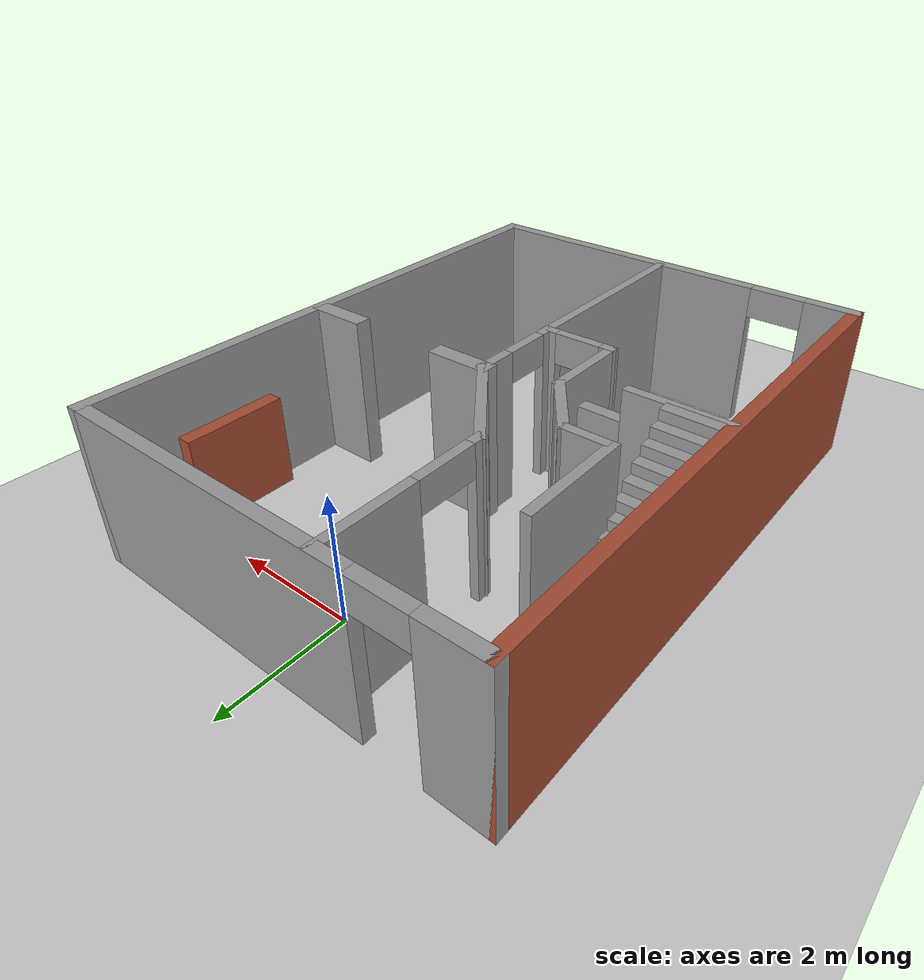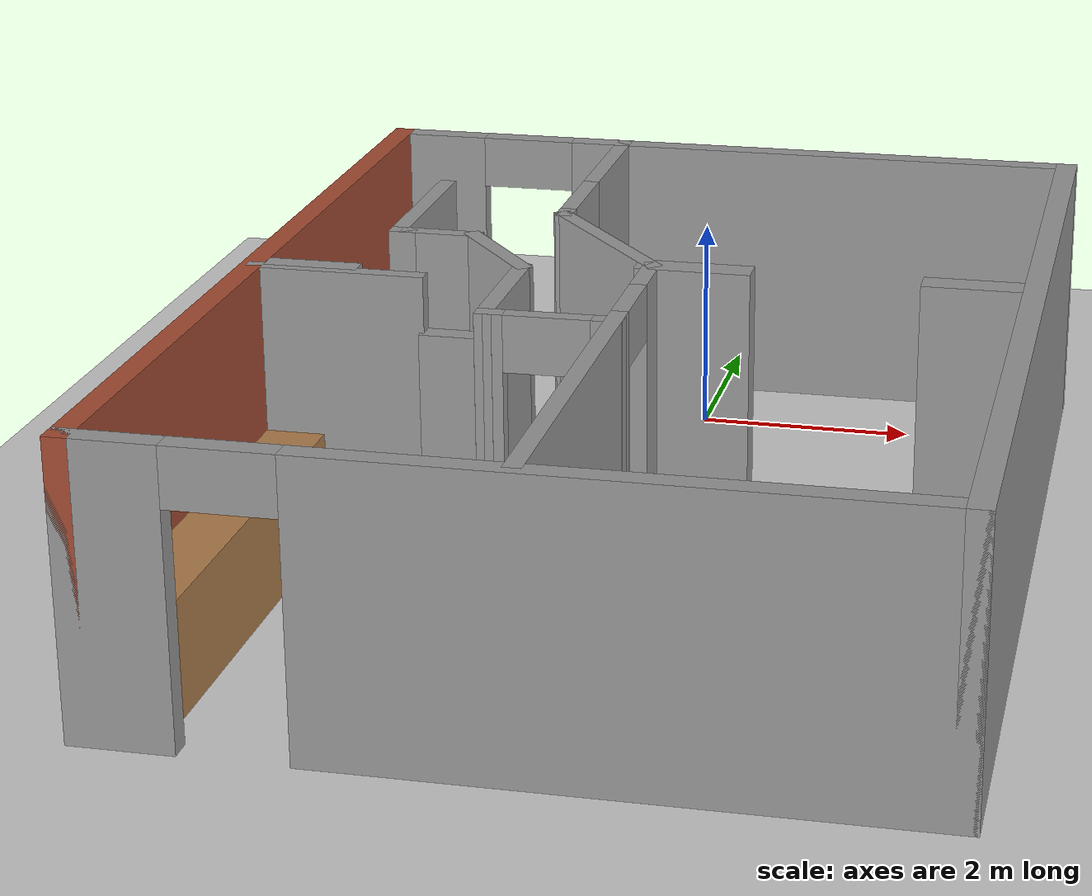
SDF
<sdf version="1.6">
 <world name="default">
  <light name="sun" type="directional">
   <pose>0 0 10 0 -0 0</pose>
   <diffuse>0.8 0.8 0.8 1</diffuse>
   <specular>0.1 0.1 0.1 1</specular>
   <attenuation>
    <range>1000</range>
    <constant>0.9</constant>
    <linear>0.01</linear>
    <quadratic>0.001</quadratic>
   </attenuation>
   <direction>-0.5 0.5 -1</direction>
  </light>
  <model name="ground_plane">
   <static>1</static>
   <link name="link">
    <collision name="collision">
     <geometry><plane><normal>0 0 1</normal><size>100 100</size></plane></geometry>
     <surface><friction><ode><mu>100</mu><mu2>50</mu2></ode></friction></surface>
    </collision>
    <visual name="visual">
     <cast_shadows>0</cast_shadows>
     <geometry><plane><normal>0 0 1</normal><size>100 100</size></plane></geometry>
     <material>
      <script><uri>file://media/materials/scripts/gazebo.material</uri><name>Gazebo/Grey</name></script>
     </material>
    </visual>
   </link>
  </model>
  <gravity>0 0 -9.8</gravity>
  <magnetic_field>6e-06 2.3e-05 -4.2e-05</magnetic_field>
  <atmosphere type="adiabatic"/>
  <physics name="default_physics" default="0" type="ode">
   <max_step_size>0.001</max_step_size>
   <real_time_factor>1</real_time_factor>
   <real_time_update_rate>1000</real_time_update_rate>
  </physics>
  <scene><ambient>0.4 0.4 0.4 1</ambient><background>0.7 0.7 0.7 1</background><shadows>1</shadows></scene>
  <spherical_coordinates>
   <surface_model>EARTH_WGS84</surface_model>
   <latitude_deg>0</latitude_deg>
   <longitude_deg>0</longitude_deg>
   <elevation>0</elevation>
   <heading_deg>0</heading_deg>
  </spherical_coordinates>
  <model name="23_PG">
   <pose>0.00165 -3.38269 0 0 -0 0</pose>
   <link name="Door_2">
    <collision name="Door_2_Collision">
     <geometry><box><size>0.71485 0.2 2</size></box></geometry>
     <pose>0 0 1 0 -0 0</pose>
    </collision>
    <visual name="Door_2_Visual">
     <pose>0 0 1 0 -0 0</pose>
     <geometry><box><size>0.71485 0.2 2</size></box></geometry>
     <material>
      <script><uri>file://media/materials/scripts/gazebo.material</uri><name>Gazebo/Grey</name></script>
     </material>
    </visual>
    <pose>-1.47346 -0.250326 0 0 -0 0</pose>
   </link>
   <link name="Stairs_1">
    <visual name="Stairs_1_Visual_0">
     <pose>-2.83563 2.63189 0.083333 0 -0 0</pose>
     <geometry><box><size>0.828075 0.195422 0.166667</size></box></geometry>
     <material>
      <script><uri>file://media/materials/scripts/gazebo.material</uri><name>Gazebo/Grey</name></script>
      <ambient>1 1 1 1</ambient>
     </material>
    </visual>
    <collision name="Stairs_1_Collision_0">
     <geometry><box><size>0.828075 0.195422 0.166667</size></box></geometry>
     <pose>-2.83563 2.63189 0.083333 0 -0 0</pose>
    </collision>
    <visual name="Stairs_1_Visual_1">
     <pose>-2.83563 2.43647 0.25 0 -0 0</pose>
     <geometry><box><size>0.828075 0.195422 0.166667</size></box></geometry>
     <material>
      <script><uri>file://media/materials/scripts/gazebo.material</uri><name>Gazebo/Grey</name></script>
      <ambient>1 1 1 1</ambient>
     </material>
    </visual>
    <collision name="Stairs_1_Collision_1">
     <geometry><box><size>0.828075 0.195422 0.166667</size></box></geometry>
     <pose>-2.83563 2.43647 0.25 0 -0 0</pose>
    </collision>
    <visual name="Stairs_1_Visual_2">
     <pose>-2.83563 2.24105 0.416667 0 -0 0</pose>
     <geometry><box><size>0.828075 0.195422 0.166667</size></box></geometry>
     <material>
      <script><uri>file://media/materials/scripts/gazebo.material</uri><name>Gazebo/Grey</name></script>
      <ambient>1 1 1 1</ambient>
     </material>
    </visual>
    <collision name="Stairs_1_Collision_2">
     <geometry><box><size>0.828075 0.195422 0.166667</size></box></geometry>
     <pose>-2.83563 2.24105 0.416667 0 -0 0</pose>
    </collision>
    <visual name="Stairs_1_Visual_3">
     <pose>-2.83563 2.04562 0.583333 0 -0 0</pose>
     <geometry><box><size>0.828075 0.195422 0.166667</size></box></geometry>
     <material>
      <script><uri>file://media/materials/scripts/gazebo.material</uri><name>Gazebo/Grey</name></script>
      <ambient>1 1 1 1</ambient>
     </material>
    </visual>
    <collision name="Stairs_1_Collision_3">
     <geometry><box><size>0.828075 0.195422 0.166667</size></box></geometry>
     <pose>-2.83563 2.04562 0.583333 0 -0 0</pose>
    </collision>
    <visual name="Stairs_1_Visual_4">
     <pose>-2.83563 1.8502 0.75 0 -0 0</pose>
     <geometry><box><size>0.828075 0.195422 0.166667</size></box></geometry>
     <material>
      <script><uri>file://media/materials/scripts/gazebo.material</uri><name>Gazebo/Grey</name></script>
      <ambient>1 1 1 1</ambient>
     </material>
    </visual>
    <collision name="Stairs_1_Collision_4">
     <geometry><box><size>0.828075 0.195422 0.166667</size></box></geometry>
     <pose>-2.83563 1.8502 0.75 0 -0 0</pose>
    </collision>
    <visual name="Stairs_1_Visual_5">
     <pose>-2.83563 1.65478 0.916667 0 -0 0</pose>
     <geometry><box><size>0.828075 0.195422 0.166667</size></box></geometry>
     <material>
      <script><uri>file://media/materials/scripts/gazebo.material</uri><name>Gazebo/Grey</name></script>
      <ambient>1 1 1 1</ambient>
     </material>
    </visual>
    <collision name="Stairs_1_Collision_5">
     <geometry><box><size>0.828075 0.195422 0.166667</size></box></geometry>
     <pose>-2.83563 1.65478 0.916667 0 -0 0</pose>
    </collision>
    <visual name="Stairs_1_Visual_6">
     <pose>-2.83563 1.45936 1.08333 0 -0 0</pose>
     <geometry><box><size>0.828075 0.195422 0.166667</size></box></geometry>
     <material>
      <script><uri>file://media/materials/scripts/gazebo.material</uri><name>Gazebo/Grey</name></script>
      <ambient>1 1 1 1</ambient>
     </material>
    </visual>
    <collision name="Stairs_1_Collision_6">
     <geometry><box><size>0.828075 0.195422 0.166667</size></box></geometry>
     <pose>-2.83563 1.45936 1.08333 0 -0 0</pose>
    </collision>
    <visual name="Stairs_1_Visual_7">
     <pose>-2.83563 1.26394 1.25 0 -0 0</pose>
     <geometry><box><size>0.828075 0.195422 0.166667</size></box></geometry>
     <material>
      <script><uri>file://media/materials/scripts/gazebo.material</uri><name>Gazebo/Grey</name></script>
      <ambient>1 1 1 1</ambient>
     </material>
    </visual>
    <collision name="Stairs_1_Collision_7">
     <geometry><box><size>0.828075 0.195422 0.166667</size></box></geometry>
     <pose>-2.83563 1.26394 1.25 0 -0 0</pose>
    </collision>
    <visual name="Stairs_1_Visual_8">
     <pose>-2.83563 1.06852 1.41667 0 -0 0</pose>
     <geometry><box><size>0.828075 0.195422 0.166667</size></box></geometry>
     <material>
      <script><uri>file://media/materials/scripts/gazebo.material</uri><name>Gazebo/Grey</name></script>
      <ambient>1 1 1 1</ambient>
     </material>
    </visual>
    <collision name="Stairs_1_Collision_8">
     <geometry><box><size>0.828075 0.195422 0.166667</size></box></geometry>
     <pose>-2.83563 1.06852 1.41667 0 -0 0</pose>
    </collision>
    <visual name="Stairs_1_Visual_9">
     <pose>-2.83563 0.873093 1.58333 0 -0 0</pose>
     <geometry><box><size>0.828075 0.195422 0.166667</size></box></geometry>
     <material>
      <script><uri>file://media/materials/scripts/gazebo.material</uri><name>Gazebo/Grey</name></script>
      <ambient>1 1 1 1</ambient>
     </material>
    </visual>
    <collision name="Stairs_1_Collision_9">
     <geometry><box><size>0.828075 0.195422 0.166667</size></box></geometry>
     <pose>-2.83563 0.873093 1.58333 0 -0 0</pose>
    </collision>
    <visual name="Stairs_1_Visual_10">
     <pose>-2.83563 0.677672 1.75 0 -0 0</pose>
     <geometry><box><size>0.828075 0.195422 0.166667</size></box></geometry>
     <material>
      <script><uri>file://media/materials/scripts/gazebo.material</uri><name>Gazebo/Grey</name></script>
      <ambient>1 1 1 1</ambient>
     </material>
    </visual>
    <collision name="Stairs_1_Collision_10">
     <geometry><box><size>0.828075 0.195422 0.166667</size></box></geometry>
     <pose>-2.83563 0.677672 1.75 0 -0 0</pose>
    </collision>
    <visual name="Stairs_1_Visual_11">
     <pose>-2.83563 0.48225 1.91667 0 -0 0</pose>
     <geometry><box><size>0.828075 0.195422 0.166667</size></box></geometry>
     <material>
      <script><uri>file://media/materials/scripts/gazebo.material</uri><name>Gazebo/Grey</name></script>
      <ambient>1 1 1 1</ambient>
     </material>
    </visual>
    <collision name="Stairs_1_Collision_11">
     <geometry><box><size>0.828075 0.195422 0.166667</size></box></geometry>
     <pose>-2.83563 0.48225 1.91667 0 -0 0</pose>
    </collision>
    <visual name="Stairs_1_Visual_12">
     <pose>-2.83563 0.286828 2.08333 0 -0 0</pose>
     <geometry><box><size>0.828075 0.195422 0.166667</size></box></geometry>
     <material>
      <script><uri>file://media/materials/scripts/gazebo.material</uri><name>Gazebo/Grey</name></script>
      <ambient>1 1 1 1</ambient>
     </material>
    </visual>
    <collision name="Stairs_1_Collision_12">
     <geometry><box><size>0.828075 0.195422 0.166667</size></box></geometry>
     <pose>-2.83563 0.286828 2.08333 0 -0 0</pose>
    </collision>
    <visual name="Stairs_1_Visual_13">
     <pose>-2.83563 0.091407 2.25 0 -0 0</pose>
     <geometry><box><size>0.828075 0.195422 0.166667</size></box></geometry>
     <material>
      <script><uri>file://media/materials/scripts/gazebo.material</uri><name>Gazebo/Grey</name></script>
      <ambient>1 1 1 1</ambient>
     </material>
    </visual>
    <collision name="Stairs_1_Collision_13">
     <geometry><box><size>0.828075 0.195422 0.166667</size></box></geometry>
     <pose>-2.83563 0.091407 2.25 0 -0 0</pose>
    </collision>
    <visual name="Stairs_1_Visual_14">
     <pose>-2.83563 -0.104015 2.41667 0 -0 0</pose>
     <geometry><box><size>0.828075 0.195422 0.166667</size></box></geometry>
     <material>
      <script><uri>file://media/materials/scripts/gazebo.material</uri><name>Gazebo/Grey</name></script>
      <ambient>1 1 1 1</ambient>
     </material>
    </visual>
    <collision name="Stairs_1_Collision_14">
     <geometry><box><size>0.828075 0.195422 0.166667</size></box></geometry>
     <pose>-2.83563 -0.104015 2.41667 0 -0 0</pose>
    </collision>
   </link>
   <link name="Wall_0">
    <pose>0 4.4515 0 0 -0 0</pose>
    <visual name="Wall_0_Visual_0">
     <pose>-2.9629 0 1.25 0 -0 0</pose>
     <geometry><box><size>0.981203 0.2 2.5</size></box></geometry>
     <material>
      <script><uri>file://media/materials/scripts/gazebo.material</uri><name>Gazebo/Grey</name></script>
      <ambient>1 1 1 1</ambient>
     </material>
    </visual>
    <collision name="Wall_0_Collision_0">
     <geometry><box><size>0.981203 0.2 2.5</size></box></geometry>
     <pose>-2.9629 0 1.25 0 -0 0</pose>
    </collision>
    <visual name="Wall_0_Visual_1">
     <pose>0.940602 0 1.25 0 -0 0</pose>
     <geometry><box><size>5.0258 0.2 2.5</size></box></geometry>
     <material>
      <script><uri>file://media/materials/scripts/gazebo.material</uri><name>Gazebo/Grey</name></script>
      <ambient>1 1 1 1</ambient>
     </material>
    </visual>
    <collision name="Wall_0_Collision_1">
     <geometry><box><size>5.0258 0.2 2.5</size></box></geometry>
     <pose>0.940602 0 1.25 0 -0 0</pose>
    </collision>
    <visual name="Wall_0_Visual_2">
     <pose>-2.0223 0 2.25 0 -0 0</pose>
     <geometry><box><size>0.9 0.2 0.5</size></box></geometry>
     <material>
      <script><uri>file://media/materials/scripts/gazebo.material</uri><name>Gazebo/Grey</name></script>
      <ambient>1 1 1 1</ambient>
     </material>
    </visual>
    <collision name="Wall_0_Collision_2">
     <geometry><box><size>0.9 0.2 0.5</size></box></geometry>
     <pose>-2.0223 0 2.25 0 -0 0</pose>
    </collision>
   </link>
   <link name="Wall_11">
    <collision name="Wall_11_Collision">
     <geometry><box><size>1.02 0.27 2.5</size></box></geometry>
     <pose>0 0 1.25 0 -0 0</pose>
    </collision>
    <visual name="Wall_11_Visual">
     <pose>0 0 1.25 0 -0 0</pose>
     <geometry><box><size>1.02 0.27 2.5</size></box></geometry>
     <material>
      <script><uri>file://media/materials/scripts/gazebo.material</uri><name>Gazebo/Grey</name></script>
      <ambient>1 1 1 1</ambient>
     </material>
    </visual>
    <pose>0.4215 0.4735 0 0 -0 0</pose>
   </link>
   <link name="Wall_13">
    <collision name="Wall_13_Collision">
     <geometry><box><size>1.039 0.27 2.5</size></box></geometry>
     <pose>0 0 1.25 0 -0 0</pose>
    </collision>
    <visual name="Wall_13_Visual">
     <pose>0 0 1.25 0 -0 0</pose>
     <geometry><box><size>1.039 0.27 2.5</size></box></geometry>
     <material>
      <script><uri>file://media/materials/scripts/gazebo.material</uri><name>Gazebo/Grey</name></script>
      <ambient>1 1 1 1</ambient>
     </material>
    </visual>
    <pose>2.912 0.4735 0 0 -0 0</pose>
   </link>
   <link name="Wall_17">
    <collision name="Wall_17_Collision">
     <geometry><box><size>1.6 0.15 2.5</size></box></geometry>
     <pose>0 0 1.25 0 -0 0</pose>
    </collision>
    <visual name="Wall_17_Visual">
     <pose>0 0 1.25 0 -0 0</pose>
     <geometry><box><size>1.6 0.15 2.5</size></box></geometry>
     <material>
      <script><uri>file://media/materials/scripts/gazebo.material</uri><name>Gazebo/Grey</name></script>
      <ambient>1 1 1 1</ambient>
     </material>
    </visual>
    <pose>-2.5935 -0.2235 0 0 -0 0</pose>
   </link>
   <link name="Wall_19">
    <pose>0.0465 -1.9515 0 0 0 -1.5708</pose>
    <visual name="Wall_19_Visual_0">
     <pose>-2.17681 0 1.25 0 -0 0</pose>
     <geometry><box><size>0.646388 0.15 2.5</size></box></geometry>
     <material>
      <script><uri>file://media/materials/scripts/gazebo.material</uri><name>Gazebo/Grey</name></script>
      <ambient>1 1 1 1</ambient>
     </material>
    </visual>
    <collision name="Wall_19_Collision_0">
     <geometry><box><size>0.646388 0.15 2.5</size></box></geometry>
     <pose>-2.17681 0 1.25 0 -0 0</pose>
    </collision>
    <visual name="Wall_19_Visual_1">
     <pose>0.693844 0 1.25 0 -0 0</pose>
     <geometry><box><size>3.61231 0.15 2.5</size></box></geometry>
     <material>
      <script><uri>file://media/materials/scripts/gazebo.material</uri><name>Gazebo/Grey</name></script>
      <ambient>1 1 1 1</ambient>
     </material>
    </visual>
    <collision name="Wall_19_Collision_1">
     <geometry><box><size>3.61231 0.15 2.5</size></box></geometry>
     <pose>0.693844 0 1.25 0 -0 0</pose>
    </collision>
    <visual name="Wall_19_Visual_2">
     <pose>-1.48296 0 2.25 0 -0 0</pose>
     <geometry><box><size>0.7413 0.15 0.5</size></box></geometry>
     <material>
      <script><uri>file://media/materials/scripts/gazebo.material</uri><name>Gazebo/Grey</name></script>
      <ambient>1 1 1 1</ambient>
     </material>
    </visual>
    <collision name="Wall_19_Collision_2">
     <geometry><box><size>0.7413 0.15 0.5</size></box></geometry>
     <pose>-1.48296 0 2.25 0 -0 0</pose>
    </collision>
   </link>
   <link name="Wall_2">
    <collision name="Wall_2_Collision">
     <geometry><box><size>9.103 0.2 2.5</size></box></geometry>
     <pose>0 0 1.25 0 -0 0</pose>
    </collision>
    <visual name="Wall_2_Visual">
     <pose>0 0 1.25 0 -0 0</pose>
     <geometry><box><size>9.103 0.2 2.5</size></box></geometry>
     <material>
      <script><uri>file://media/materials/scripts/gazebo.material</uri><name>Gazebo/Bricks</name></script>
      <ambient>1 1 1 1</ambient>
     </material>
    </visual>
    <pose>-3.3535 0 0 0 0 -1.5708</pose>
   </link>
   <link name="Wall_21">
    <pose>-0.495736 -1.06377 0 0 0 -3.12936</pose>
    <visual name="Wall_21_Visual_0">
     <pose>-0.491963 0 1.25 0 -0 0</pose>
     <geometry><box><size>0.266074 0.15 2.5</size></box></geometry>
     <material>
      <script><uri>file://media/materials/scripts/gazebo.material</uri><name>Gazebo/Grey</name></script>
      <ambient>1 1 1 1</ambient>
     </material>
    </visual>
    <collision name="Wall_21_Collision_0">
     <geometry><box><size>0.266074 0.15 2.5</size></box></geometry>
     <pose>-0.491963 0 1.25 0 -0 0</pose>
    </collision>
    <visual name="Wall_21_Visual_1">
     <pose>0.503774 0 1.25 0 -0 0</pose>
     <geometry><box><size>0.242452 0.15 2.5</size></box></geometry>
     <material>
      <script><uri>file://media/materials/scripts/gazebo.material</uri><name>Gazebo/Grey</name></script>
      <ambient>1 1 1 1</ambient>
     </material>
    </visual>
    <collision name="Wall_21_Collision_1">
     <geometry><box><size>0.242452 0.15 2.5</size></box></geometry>
     <pose>0.503774 0 1.25 0 -0 0</pose>
    </collision>
    <visual name="Wall_21_Visual_2">
     <pose>0.011811 0 2.25 0 -0 0</pose>
     <geometry><box><size>0.741474 0.15 0.5</size></box></geometry>
     <material>
      <script><uri>file://media/materials/scripts/gazebo.material</uri><name>Gazebo/Grey</name></script>
      <ambient>1 1 1 1</ambient>
     </material>
    </visual>
    <collision name="Wall_21_Collision_2">
     <geometry><box><size>0.741474 0.15 0.5</size></box></geometry>
     <pose>0.011811 0 2.25 0 -0 0</pose>
    </collision>
   </link>
   <link name="Wall_22">
    <collision name="Wall_22_Collision">
     <geometry><box><size>1.425 0.15 2.5</size></box></geometry>
     <pose>0 0 1.25 0 -0 0</pose>
    </collision>
    <visual name="Wall_22_Visual">
     <pose>0 0 1.25 0 -0 0</pose>
     <geometry><box><size>1.425 0.15 2.5</size></box></geometry>
     <material>
      <script><uri>file://media/materials/scripts/gazebo.material</uri><name>Gazebo/Grey</name></script>
      <ambient>1 1 1 1</ambient>
     </material>
    </visual>
    <pose>-1.0455 -0.433 0 0 -0 1.5708</pose>
   </link>
   <link name="Wall_23">
    <collision name="Wall_23_Collision">
     <geometry><box><size>1.22809 0.15 2.5</size></box></geometry>
     <pose>0 0 1.25 0 -0 0</pose>
    </collision>
    <visual name="Wall_23_Visual">
     <pose>0 0 1.25 0 -0 0</pose>
     <geometry><box><size>1.22809 0.15 2.5</size></box></geometry>
     <material>
      <script><uri>file://media/materials/scripts/gazebo.material</uri><name>Gazebo/Grey</name></script>
      <ambient>1 1 1 1</ambient>
     </material>
    </visual>
    <pose>-1.3745 0.6315 0 0 -0 2.22728</pose>
   </link>
   <link name="Wall_26">
    <collision name="Wall_26_Collision">
     <geometry><box><size>0.75 0.15 2.5</size></box></geometry>
     <pose>0 0 1.25 0 -0 0</pose>
    </collision>
    <visual name="Wall_26_Visual">
     <pose>0 0 1.25 0 -0 0</pose>
     <geometry><box><size>0.75 0.15 2.5</size></box></geometry>
     <material>
      <script><uri>file://media/materials/scripts/gazebo.material</uri><name>Gazebo/Grey</name></script>
      <ambient>1 1 1 1</ambient>
     </material>
    </visual>
    <pose>-2.0035 1.0585 0 0 -0 3.14159</pose>
   </link>
   <link name="Wall_27">
    <collision name="Wall_27_Collision">
     <geometry><box><size>0.25 0.15 2.5</size></box></geometry>
     <pose>0 0 1.25 0 -0 0</pose>
    </collision>
    <visual name="Wall_27_Visual">
     <pose>0 0 1.25 0 -0 0</pose>
     <geometry><box><size>0.25 0.15 2.5</size></box></geometry>
     <material>
      <script><uri>file://media/materials/scripts/gazebo.material</uri><name>Gazebo/Grey</name></script>
      <ambient>1 1 1 1</ambient>
     </material>
    </visual>
    <pose>-2.3535 1.0585 0 0 -0 3.14159</pose>
   </link>
   <link name="Wall_31">
    <collision name="Wall_31_Collision">
     <geometry><box><size>1.75 0.15 2.5</size></box></geometry>
     <pose>0 0 1.25 0 -0 0</pose>
    </collision>
    <visual name="Wall_31_Visual">
     <pose>0 0 1.25 0 -0 0</pose>
     <geometry><box><size>1.75 0.15 2.5</size></box></geometry>
     <material>
      <script><uri>file://media/materials/scripts/gazebo.material</uri><name>Gazebo/Grey</name></script>
      <ambient>1 1 1 1</ambient>
     </material>
    </visual>
    <pose>-2.4035 1.8585 0 0 0 -1.5708</pose>
   </link>
   <link name="Wall_33">
    <collision name="Wall_33_Collision">
     <geometry><box><size>1.6 0.4 1.5</size></box></geometry>
     <pose>0 0 0.75 0 -0 0</pose>
    </collision>
    <visual name="Wall_33_Visual">
     <pose>0 0 0.75 0 -0 0</pose>
     <geometry><box><size>1.6 0.4 1.5</size></box></geometry>
     <material>
      <script><uri>file://media/materials/scripts/gazebo.material</uri><name>Gazebo/Bricks</name></script>
      <ambient>1 1 1 1</ambient>
     </material>
    </visual>
    <pose>3.21473 2.52237 0 0 0 -1.5708</pose>
   </link>
   <link name="Wall_35">
    <collision name="Wall_35_Collision">
     <geometry><box><size>4.4 0.6 1</size></box></geometry>
     <pose>0 0 0.5 0 -0 0</pose>
    </collision>
    <visual name="Wall_35_Visual">
     <pose>0 0 0.5 0 -0 0</pose>
     <geometry><box><size>4.4 0.6 1</size></box></geometry>
     <material>
      <script><uri>file://media/materials/scripts/gazebo.material</uri><name>Gazebo/Wood</name></script>
      <ambient>1 1 1 1</ambient>
     </material>
    </visual>
    <pose>-3.02718 -2.34897 0 0 0 -1.5708</pose>
   </link>
   <link name="Wall_4">
    <collision name="Wall_4_Collision">
     <geometry><box><size>9.103 0.2 2.5</size></box></geometry>
     <pose>0 0 1.25 0 -0 0</pose>
    </collision>
    <visual name="Wall_4_Visual">
     <pose>0 0 1.25 0 -0 0</pose>
     <geometry><box><size>9.103 0.2 2.5</size></box></geometry>
     <material>
      <script><uri>file://media/materials/scripts/gazebo.material</uri><name>Gazebo/Grey</name></script>
      <ambient>1 1 1 1</ambient>
     </material>
    </visual>
    <pose>3.3535 0 0 0 -0 1.5708</pose>
   </link>
   <link name="Wall_6">
    <pose>0 -4.4515 0 0 -0 0</pose>
    <visual name="Wall_6_Visual_0">
     <pose>-3.00919 0 1.25 0 -0 0</pose>
     <geometry><box><size>0.888628 0.2 2.5</size></box></geometry>
     <material>
      <script><uri>file://media/materials/scripts/gazebo.material</uri><name>Gazebo/Grey</name></script>
      <ambient>1 1 1 1</ambient>
     </material>
    </visual>
    <collision name="Wall_6_Collision_0">
     <geometry><box><size>0.888628 0.2 2.5</size></box></geometry>
     <pose>-3.00919 0 1.25 0 -0 0</pose>
    </collision>
    <visual name="Wall_6_Visual_1">
     <pose>0.894314 0 1.25 0 -0 0</pose>
     <geometry><box><size>5.11837 0.2 2.5</size></box></geometry>
     <material>
      <script><uri>file://media/materials/scripts/gazebo.material</uri><name>Gazebo/Grey</name></script>
      <ambient>1 1 1 1</ambient>
     </material>
    </visual>
    <collision name="Wall_6_Collision_1">
     <geometry><box><size>5.11837 0.2 2.5</size></box></geometry>
     <pose>0.894314 0 1.25 0 -0 0</pose>
    </collision>
    <visual name="Wall_6_Visual_2">
     <pose>-2.11487 0 2.25 0 -0 0</pose>
     <geometry><box><size>0.9 0.2 0.5</size></box></geometry>
     <material>
      <script><uri>file://media/materials/scripts/gazebo.material</uri><name>Gazebo/Grey</name></script>
      <ambient>1 1 1 1</ambient>
     </material>
    </visual>
    <collision name="Wall_6_Collision_2">
     <geometry><box><size>0.9 0.2 0.5</size></box></geometry>
     <pose>-2.11487 0 2.25 0 -0 0</pose>
    </collision>
   </link>
   <link name="Wall_8">
    <pose>-1.0565 3.1665 0 0 0 -1.5708</pose>
    <visual name="Wall_8_Visual_0">
     <pose>-0.596018 0 1.25 0 -0 0</pose>
     <geometry><box><size>1.55796 0.15 2.5</size></box></geometry>
     <material>
      <script><uri>file://media/materials/scripts/gazebo.material</uri><name>Gazebo/Grey</name></script>
      <ambient>1 1 1 1</ambient>
     </material>
    </visual>
    <collision name="Wall_8_Collision_0">
     <geometry><box><size>1.55796 0.15 2.5</size></box></geometry>
     <pose>-0.596018 0 1.25 0 -0 0</pose>
    </collision>
    <visual name="Wall_8_Visual_1">
     <pose>1.25543 0 1.25 0 -0 0</pose>
     <geometry><box><size>0.239137 0.15 2.5</size></box></geometry>
     <material>
      <script><uri>file://media/materials/scripts/gazebo.material</uri><name>Gazebo/Grey</name></script>
      <ambient>1 1 1 1</ambient>
     </material>
    </visual>
    <collision name="Wall_8_Collision_1">
     <geometry><box><size>0.239137 0.15 2.5</size></box></geometry>
     <pose>1.25543 0 1.25 0 -0 0</pose>
    </collision>
    <visual name="Wall_8_Visual_2">
     <pose>0.659413 0 2.25 0 -0 0</pose>
     <geometry><box><size>0.9529 0.15 0.5</size></box></geometry>
     <material>
      <script><uri>file://media/materials/scripts/gazebo.material</uri><name>Gazebo/Grey</name></script>
      <ambient>1 1 1 1</ambient>
     </material>
    </visual>
    <collision name="Wall_8_Collision_2">
     <geometry><box><size>0.9529 0.15 0.5</size></box></geometry>
     <pose>0.659413 0 2.25 0 -0 0</pose>
    </collision>
   </link>
   <link name="Wall_9">
    <collision name="Wall_9_Collision">
     <geometry><box><size>1.92681 0.15 2.5</size></box></geometry>
     <pose>0 0 1.25 0 -0 0</pose>
    </collision>
    <visual name="Wall_9_Visual">
     <pose>0 0 1.25 0 -0 0</pose>
     <geometry><box><size>1.92681 0.15 2.5</size></box></geometry>
     <material>
      <script><uri>file://media/materials/scripts/gazebo.material</uri><name>Gazebo/Grey</name></script>
      <ambient>1 1 1 1</ambient>
     </material>
    </visual>
    <pose>-0.505 1.17 0 0 0 -0.901065</pose>
   </link>
   <static>1</static>
  </model>
 </world>
</sdf>
